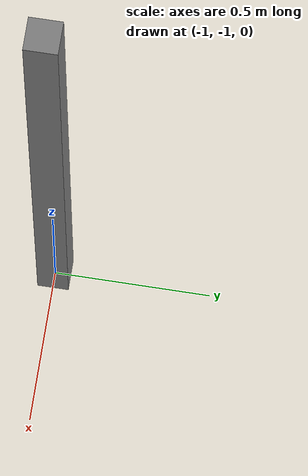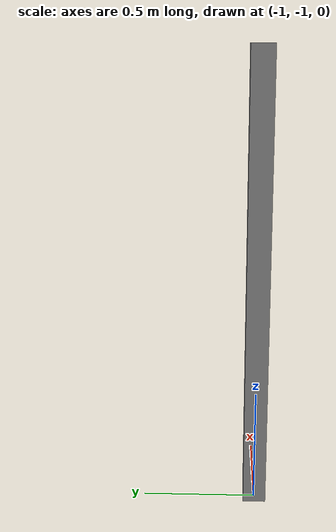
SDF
<?xml version="1.0"?>
<sdf version="1.7">
  <model name="pillar">
    <static>true</static>  <!-- Make the pillar static -->
    <link name="pillar_link">
      <visual name="visual">
        <geometry>
          <box>
            <size>0.1 0.1 2.0</size>  <!-- Dimensions of the pillar -->
          </box>
        </geometry>
        <material>
          <ambient>0.5 0.5 0.5 1</ambient>  <!-- Gray color -->
        </material>
      </visual>
      <collision name="collision">
        <geometry>
          <box>
            <size>0.1 0.1 2.0</size>  <!-- Collision geometry -->
          </box>
        </geometry>
      </collision>
    </link>
    <pose>-1.0 -1.0 1.0 0 0 0</pose>  <!-- Position of the pillar -->
  </model>
</sdf>
